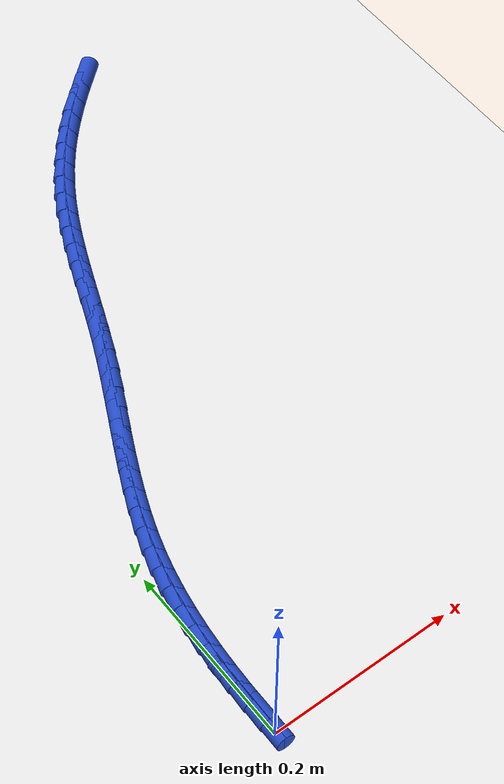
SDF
<sdf version="1.6">
 <world name="default">
  <model name="ground_plane">
   <static>1</static>
   <link name="link">
    <collision name="collision">
     <geometry><plane><normal>0 0 1</normal><size>100 100</size></plane></geometry>
     <surface><friction><ode><mu>100</mu><mu2>50</mu2></ode></friction></surface>
    </collision>
    <visual name="visual">
     <cast_shadows>0</cast_shadows>
     <geometry><plane><normal>0 0 1</normal><size>100 100</size></plane></geometry>
     <material>
      <script><uri>file://media/materials/scripts/gazebo.material</uri><name>Gazebo/WhiteGlow</name></script>
     </material>
    </visual>
   </link>
  </model>
  <model name="line">
   <link name="link_1">
    <pose>-0.00023507645814420218 0.02356147924171589 0.01 0 1.57 1.5601489729837574</pose>
    <collision name="collision">
     <geometry><cylinder><radius>0.01</radius><length>0.08</length></cylinder></geometry>
    </collision>
    <visual name="visual">
     <material>
      <script><name>Gazebo/Blue</name><uri>file://media/materials/scripts/gazebo.material</uri></script>
     </material>
     <geometry><cylinder><radius>0.01</radius><length>0.08</length></cylinder></geometry>
    </visual>
   </link>
   <link name="link_2">
    <pose>1.6090893743628086e-05 0.04715023800560799 0.01 0 1.57 1.5363617328912627</pose>
    <collision name="collision">
     <geometry><cylinder><radius>0.01</radius><length>0.08</length></cylinder></geometry>
    </collision>
    <visual name="visual">
     <material>
      <script><name>Gazebo/Blue</name><uri>file://media/materials/scripts/gazebo.material</uri></script>
     </material>
     <geometry><cylinder><radius>0.01</radius><length>0.08</length></cylinder></geometry>
    </visual>
   </link>
   <link name="link_3">
    <pose>0.0008279500997930612 0.07071776715860631 0.01 0 1.57 1.509293770038079</pose>
    <collision name="collision">
     <geometry><cylinder><radius>0.01</radius><length>0.08</length></cylinder></geometry>
    </collision>
    <visual name="visual">
     <material>
      <script><name>Gazebo/Blue</name><uri>file://media/materials/scripts/gazebo.material</uri></script>
     </material>
     <geometry><cylinder><radius>0.01</radius><length>0.08</length></cylinder></geometry>
    </visual>
   </link>
   <link name="link_4">
    <pose>0.0022749492041336623 0.09421555756764083 0.01 0 1.57 1.4788141370203385</pose>
    <collision name="collision">
     <geometry><cylinder><radius>0.01</radius><length>0.08</length></cylinder></geometry>
    </collision>
    <visual name="visual">
     <material>
      <script><name>Gazebo/Blue</name><uri>file://media/materials/scripts/gazebo.material</uri></script>
     </material>
     <geometry><cylinder><radius>0.01</radius><length>0.08</length></cylinder></geometry>
    </visual>
   </link>
   <link name="link_5">
    <pose>0.0044315362508949956 0.11759510009964141 0.01 0 1.57 1.4447863616786807</pose>
    <collision name="collision">
     <geometry><cylinder><radius>0.01</radius><length>0.08</length></cylinder></geometry>
    </collision>
    <visual name="visual">
     <material>
      <script><name>Gazebo/Blue</name><uri>file://media/materials/scripts/gazebo.material</uri></script>
     </material>
     <geometry><cylinder><radius>0.01</radius><length>0.08</length></cylinder></geometry>
    </visual>
   </link>
   <link name="link_6">
    <pose>0.0073721592842066275 0.14080788562153812 0.01 0 1.57 1.4070785339423248</pose>
    <collision name="collision">
     <geometry><cylinder><radius>0.01</radius><length>0.08</length></cylinder></geometry>
    </collision>
    <visual name="visual">
     <material>
      <script><name>Gazebo/Blue</name><uri>file://media/materials/scripts/gazebo.material</uri></script>
     </material>
     <geometry><cylinder><radius>0.01</radius><length>0.08</length></cylinder></geometry>
    </visual>
   </link>
   <link name="link_7">
    <pose>0.011171266348198119 0.16380540500026086 0.01 0 1.57 1.3655762167708285</pose>
    <collision name="collision">
     <geometry><cylinder><radius>0.01</radius><length>0.08</length></cylinder></geometry>
    </collision>
    <visual name="visual">
     <material>
      <script><name>Gazebo/Blue</name><uri>file://media/materials/scripts/gazebo.material</uri></script>
     </material>
     <geometry><cylinder><radius>0.01</radius><length>0.08</length></cylinder></geometry>
    </visual>
   </link>
   <link name="link_8">
    <pose>0.015903305486999045 0.1865391491027396 0.01 0 1.57 1.320198483745123</pose>
    <collision name="collision">
     <geometry><cylinder><radius>0.01</radius><length>0.08</length></cylinder></geometry>
    </collision>
    <visual name="visual">
     <material>
      <script><name>Gazebo/Blue</name><uri>file://media/materials/scripts/gazebo.material</uri></script>
     </material>
     <geometry><cylinder><radius>0.01</radius><length>0.08</length></cylinder></geometry>
    </visual>
   </link>
   <link name="link_9">
    <pose>0.02164272474473896 0.20896060879590433 0.01 0 1.57 1.2716168211967784</pose>
    <collision name="collision">
     <geometry><cylinder><radius>0.01</radius><length>0.08</length></cylinder></geometry>
    </collision>
    <visual name="visual">
     <material>
      <script><name>Gazebo/Blue</name><uri>file://media/materials/scripts/gazebo.material</uri></script>
     </material>
     <geometry><cylinder><radius>0.01</radius><length>0.08</length></cylinder></geometry>
    </visual>
   </link>
   <link name="link_10">
    <pose>0.02844922572811799 0.23102829390374224 0.01 0 1.57 1.2264625580924882</pose>
    <collision name="collision">
     <geometry><cylinder><radius>0.01</radius><length>0.08</length></cylinder></geometry>
    </collision>
    <visual name="visual">
     <material>
      <script><name>Gazebo/Blue</name><uri>file://media/materials/scripts/gazebo.material</uri></script>
     </material>
     <geometry><cylinder><radius>0.01</radius><length>0.08</length></cylinder></geometry>
    </visual>
   </link>
   <link name="link_11">
    <pose>0.03624488986983642 0.2527662182132247 0.01 0 1.57 1.1884935130552572</pose>
    <collision name="collision">
     <geometry><cylinder><radius>0.01</radius><length>0.08</length></cylinder></geometry>
    </collision>
    <visual name="visual">
     <material>
      <script><name>Gazebo/Blue</name><uri>file://media/materials/scripts/gazebo.material</uri></script>
     </material>
     <geometry><cylinder><radius>0.01</radius><length>0.08</length></cylinder></geometry>
    </visual>
   </link>
   <link name="link_12">
    <pose>0.04487680689900698 0.2742340897967839 0.01 0 1.57 1.1578261310987938</pose>
    <collision name="collision">
     <geometry><cylinder><radius>0.01</radius><length>0.08</length></cylinder></geometry>
    </collision>
    <visual name="visual">
     <material>
      <script><name>Gazebo/Blue</name><uri>file://media/materials/scripts/gazebo.material</uri></script>
     </material>
     <geometry><cylinder><radius>0.01</radius><length>0.08</length></cylinder></geometry>
    </visual>
   </link>
   <link name="link_13">
    <pose>0.05419131224754835 0.2954919757545586 0.01 0 1.57 1.1344398003429639</pose>
    <collision name="collision">
     <geometry><cylinder><radius>0.01</radius><length>0.08</length></cylinder></geometry>
    </collision>
    <visual name="visual">
     <material>
      <script><name>Gazebo/Blue</name><uri>file://media/materials/scripts/gazebo.material</uri></script>
     </material>
     <geometry><cylinder><radius>0.01</radius><length>0.08</length></cylinder></geometry>
    </visual>
   </link>
   <link name="link_14">
    <pose>0.06403474134737928 0.3165999431866877 0.01 0 1.57 1.1182618441684526</pose>
    <collision name="collision">
     <geometry><cylinder><radius>0.01</radius><length>0.08</length></cylinder></geometry>
    </collision>
    <visual name="visual">
     <material>
      <script><name>Gazebo/Blue</name><uri>file://media/materials/scripts/gazebo.material</uri></script>
     </material>
     <geometry><cylinder><radius>0.01</radius><length>0.08</length></cylinder></geometry>
    </visual>
   </link>
   <link name="link_15">
    <pose>0.07425342963041842 0.33761805919331006 0.01 0 1.57 1.1092046508610245</pose>
    <collision name="collision">
     <geometry><cylinder><radius>0.01</radius><length>0.08</length></cylinder></geometry>
    </collision>
    <visual name="visual">
     <material>
      <script><name>Gazebo/Blue</name><uri>file://media/materials/scripts/gazebo.material</uri></script>
     </material>
     <geometry><cylinder><radius>0.01</radius><length>0.08</length></cylinder></geometry>
    </visual>
   </link>
   <link name="link_16">
    <pose>0.08469371252858456 0.35860639087456453 0.01 0 1.57 1.1071903687065814</pose>
    <collision name="collision">
     <geometry><cylinder><radius>0.01</radius><length>0.08</length></cylinder></geometry>
    </collision>
    <visual name="visual">
     <material>
      <script><name>Gazebo/Blue</name><uri>file://media/materials/scripts/gazebo.material</uri></script>
     </material>
     <geometry><cylinder><radius>0.01</radius><length>0.08</length></cylinder></geometry>
    </visual>
   </link>
   <link name="link_17">
    <pose>0.09520192547379637 0.37962500533059 0.01 0 1.57 1.1121639766737714</pose>
    <collision name="collision">
     <geometry><cylinder><radius>0.01</radius><length>0.08</length></cylinder></geometry>
    </collision>
    <visual name="visual">
     <material>
      <script><name>Gazebo/Blue</name><uri>file://media/materials/scripts/gazebo.material</uri></script>
     </material>
     <geometry><cylinder><radius>0.01</radius><length>0.08</length></cylinder></geometry>
    </visual>
   </link>
   <link name="link_18">
    <pose>0.10562440389797254 0.4007339696615254 0.01 0 1.57 1.1240956989621276</pose>
    <collision name="collision">
     <geometry><cylinder><radius>0.01</radius><length>0.08</length></cylinder></geometry>
    </collision>
    <visual name="visual">
     <material>
      <script><name>Gazebo/Blue</name><uri>file://media/materials/scripts/gazebo.material</uri></script>
     </material>
     <geometry><cylinder><radius>0.01</radius><length>0.08</length></cylinder></geometry>
    </visual>
   </link>
   <link name="link_19">
    <pose>0.11580748323303178 0.4219933509675095 0.01 0 1.57 1.1429529862613765</pose>
    <collision name="collision">
     <geometry><cylinder><radius>0.01</radius><length>0.08</length></cylinder></geometry>
    </collision>
    <visual name="visual">
     <material>
      <script><name>Gazebo/Blue</name><uri>file://media/materials/scripts/gazebo.material</uri></script>
     </material>
     <geometry><cylinder><radius>0.01</radius><length>0.08</length></cylinder></geometry>
    </visual>
   </link>
   <link name="link_20">
    <pose>0.12559792790075136 0.4434629971256428 0.01 0 1.57 1.1643094254880988</pose>
    <collision name="collision">
     <geometry><cylinder><radius>0.01</radius><length>0.08</length></cylinder></geometry>
    </collision>
    <visual name="visual">
     <material>
      <script><name>Gazebo/Blue</name><uri>file://media/materials/scripts/gazebo.material</uri></script>
     </material>
     <geometry><cylinder><radius>0.01</radius><length>0.08</length></cylinder></geometry>
    </visual>
   </link>
   <link name="link_21">
    <pose>0.13493556978566787 0.46515519653917853 0.01 0 1.57 1.1782902602926895</pose>
    <collision name="collision">
     <geometry><cylinder><radius>0.01</radius><length>0.08</length></cylinder></geometry>
    </collision>
    <visual name="visual">
     <material>
      <script><name>Gazebo/Blue</name><uri>file://media/materials/scripts/gazebo.material</uri></script>
     </material>
     <geometry><cylinder><radius>0.01</radius><length>0.08</length></cylinder></geometry>
    </visual>
   </link>
   <link name="link_22">
    <pose>0.14396893827497845 0.4869755887017988 0.01 0 1.57 1.1835920989453685</pose>
    <collision name="collision">
     <geometry><cylinder><radius>0.01</radius><length>0.08</length></cylinder></geometry>
    </collision>
    <visual name="visual">
     <material>
      <script><name>Gazebo/Blue</name><uri>file://media/materials/scripts/gazebo.material</uri></script>
     </material>
     <geometry><cylinder><radius>0.01</radius><length>0.08</length></cylinder></geometry>
    </visual>
   </link>
   <link name="link_23">
    <pose>0.15287496461246847 0.5088152991480044 0.01 0 1.57 1.1802022733946649</pose>
    <collision name="collision">
     <geometry><cylinder><radius>0.01</radius><length>0.08</length></cylinder></geometry>
    </collision>
    <visual name="visual">
     <material>
      <script><name>Gazebo/Blue</name><uri>file://media/materials/scripts/gazebo.material</uri></script>
     </material>
     <geometry><cylinder><radius>0.01</radius><length>0.08</length></cylinder></geometry>
    </visual>
   </link>
   <link name="link_24">
    <pose>0.1618305800419234 0.5305654534122963 0.01 0 1.57 1.1680357168658686</pose>
    <collision name="collision">
     <geometry><cylinder><radius>0.01</radius><length>0.08</length></cylinder></geometry>
    </collision>
    <visual name="visual">
     <material>
      <script><name>Gazebo/Blue</name><uri>file://media/materials/scripts/gazebo.material</uri></script>
     </material>
     <geometry><cylinder><radius>0.01</radius><length>0.08</length></cylinder></geometry>
    </visual>
   </link>
   <link name="link_25">
    <pose>0.17101271580712882 0.5521171770291747 0.01 0 1.57 1.1469407934667508</pose>
    <collision name="collision">
     <geometry><cylinder><radius>0.01</radius><length>0.08</length></cylinder></geometry>
    </collision>
    <visual name="visual">
     <material>
      <script><name>Gazebo/Blue</name><uri>file://media/materials/scripts/gazebo.material</uri></script>
     </material>
     <geometry><cylinder><radius>0.01</radius><length>0.08</length></cylinder></geometry>
    </visual>
   </link>
   <link name="link_26">
    <pose>0.18059830315186992 0.5733615955331403 0.01 0 1.57 1.1167253286300085</pose>
    <collision name="collision">
     <geometry><cylinder><radius>0.01</radius><length>0.08</length></cylinder></geometry>
    </collision>
    <visual name="visual">
     <material>
      <script><name>Gazebo/Blue</name><uri>file://media/materials/scripts/gazebo.material</uri></script>
     </material>
     <geometry><cylinder><radius>0.01</radius><length>0.08</length></cylinder></geometry>
    </visual>
   </link>
   <link name="link_27">
    <pose>0.19076427331993226 0.5941898344586938 0.01 0 1.57 1.0772063020759166</pose>
    <collision name="collision">
     <geometry><cylinder><radius>0.01</radius><length>0.08</length></cylinder></geometry>
    </collision>
    <visual name="visual">
     <material>
      <script><name>Gazebo/Blue</name><uri>file://media/materials/scripts/gazebo.material</uri></script>
     </material>
     <geometry><cylinder><radius>0.01</radius><length>0.08</length></cylinder></geometry>
    </visual>
   </link>
   <link name="link_28">
    <pose>0.2016875575551014 0.6144930193403363 0.01 0 1.57 1.0282869178722294</pose>
    <collision name="collision">
     <geometry><cylinder><radius>0.01</radius><length>0.08</length></cylinder></geometry>
    </collision>
    <visual name="visual">
     <material>
      <script><name>Gazebo/Blue</name><uri>file://media/materials/scripts/gazebo.material</uri></script>
     </material>
     <geometry><cylinder><radius>0.01</radius><length>0.08</length></cylinder></geometry>
    </visual>
   </link>
   <link name="link_29">
    <pose>0.2135450871011626 0.634162275712568 0.01 0 1.57 0.9711285834671429</pose>
    <collision name="collision">
     <geometry><cylinder><radius>0.01</radius><length>0.08</length></cylinder></geometry>
    </collision>
    <visual name="visual">
     <material>
      <script><name>Gazebo/Blue</name><uri>file://media/materials/scripts/gazebo.material</uri></script>
     </material>
     <geometry><cylinder><radius>0.01</radius><length>0.08</length></cylinder></geometry>
    </visual>
   </link>
   <link name="link_30">
    <pose>0.2264924099962033 0.6531008246108365 0.01 0 1.57 0.9143689457426699</pose>
    <collision name="collision">
     <geometry><cylinder><radius>0.01</radius><length>0.08</length></cylinder></geometry>
    </collision>
    <visual name="visual">
     <material>
      <script><name>Gazebo/Blue</name><uri>file://media/materials/scripts/gazebo.material</uri></script>
     </material>
     <geometry><cylinder><radius>0.01</radius><length>0.08</length></cylinder></geometry>
    </visual>
   </link>
   <link name="link_31">
    <pose>0.2405179376254366 0.6713064286267854 0.01 0 1.57 0.8621454481881927</pose>
    <collision name="collision">
     <geometry><cylinder><radius>0.01</radius><length>0.08</length></cylinder></geometry>
    </collision>
    <visual name="visual">
     <material>
      <script><name>Gazebo/Blue</name><uri>file://media/materials/scripts/gazebo.material</uri></script>
     </material>
     <geometry><cylinder><radius>0.01</radius><length>0.08</length></cylinder></geometry>
    </visual>
   </link>
   <link name="link_32">
    <pose>0.2555314544437972 0.6888213260084713 0.01 0 1.57 0.814551818937603</pose>
    <collision name="collision">
     <geometry><cylinder><radius>0.01</radius><length>0.08</length></cylinder></geometry>
    </collision>
    <visual name="visual">
     <material>
      <script><name>Gazebo/Blue</name><uri>file://media/materials/scripts/gazebo.material</uri></script>
     </material>
     <geometry><cylinder><radius>0.01</radius><length>0.08</length></cylinder></geometry>
    </visual>
   </link>
   <link name="link_33">
    <pose>0.2714422870578083 0.7056880139878459 0.01 0 1.57 0.7715566989743862</pose>
    <collision name="collision">
     <geometry><cylinder><radius>0.01</radius><length>0.08</length></cylinder></geometry>
    </collision>
    <visual name="visual">
     <material>
      <script><name>Gazebo/Blue</name><uri>file://media/materials/scripts/gazebo.material</uri></script>
     </material>
     <geometry><cylinder><radius>0.01</radius><length>0.08</length></cylinder></geometry>
    </visual>
   </link>
   <link name="link_34">
    <pose>0.2881597620739932 0.7219489897968604 0.01 0 1.57 0.7330578426366996</pose>
    <collision name="collision">
     <geometry><cylinder><radius>0.01</radius><length>0.08</length></cylinder></geometry>
    </collision>
    <visual name="visual">
     <material>
      <script><name>Gazebo/Blue</name><uri>file://media/materials/scripts/gazebo.material</uri></script>
     </material>
     <geometry><cylinder><radius>0.01</radius><length>0.08</length></cylinder></geometry>
    </visual>
   </link>
   <link name="link_35">
    <pose>0.30559320609887525 0.737646750667467 0.01 0 1.57 0.6989098247970498</pose>
    <collision name="collision">
     <geometry><cylinder><radius>0.01</radius><length>0.08</length></cylinder></geometry>
    </collision>
    <visual name="visual">
     <material>
      <script><name>Gazebo/Blue</name><uri>file://media/materials/scripts/gazebo.material</uri></script>
     </material>
     <geometry><cylinder><radius>0.01</radius><length>0.08</length></cylinder></geometry>
    </visual>
   </link>
   <link name="link_291">
    <pose>-0.0002493420954031928 0.023569654300762157 0.01 0 1.57 1.5643975309209157</pose>
    <collision name="collision">
     <geometry><cylinder><radius>0.01</radius><length>0.08</length></cylinder></geometry>
    </collision>
    <visual name="visual">
     <material>
      <script><name>Gazebo/Blue</name><uri>file://media/materials/scripts/gazebo.material</uri></script>
     </material>
     <geometry><cylinder><radius>0.01</radius><length>0.08</length></cylinder></geometry>
    </visual>
   </link>
   <link name="link_292">
    <pose>-9.803420432834059e-05 0.0472156384779845 0.01 0 1.57 -1.5687200218541621</pose>
    <collision name="collision">
     <geometry><cylinder><radius>0.01</radius><length>0.08</length></cylinder></geometry>
    </collision>
    <visual name="visual">
     <material>
      <script><name>Gazebo/Blue</name><uri>file://media/materials/scripts/gazebo.material</uri></script>
     </material>
     <geometry><cylinder><radius>0.01</radius><length>0.08</length></cylinder></geometry>
    </visual>
   </link>
  </model>
 </world>
</sdf>
